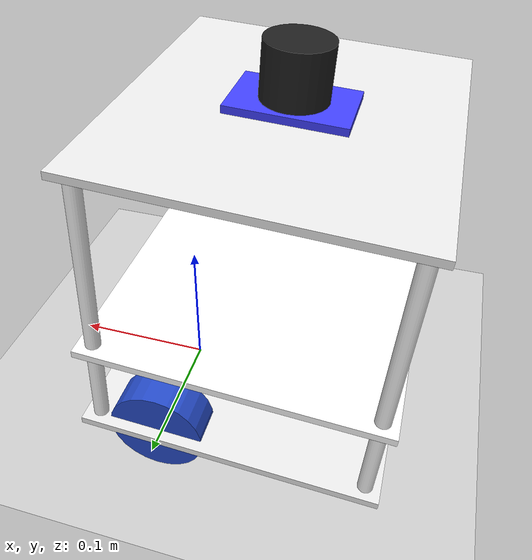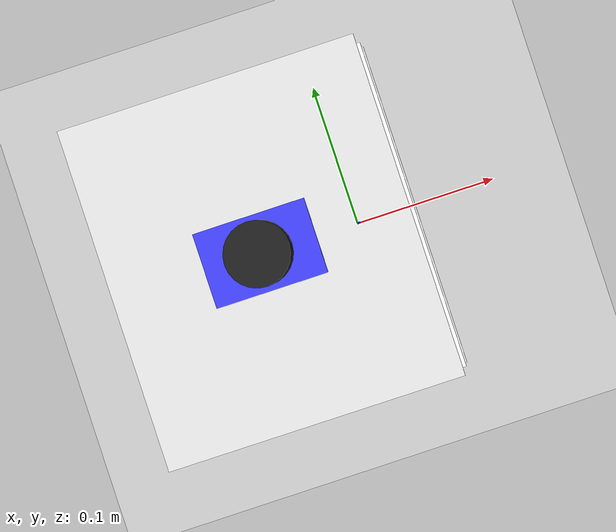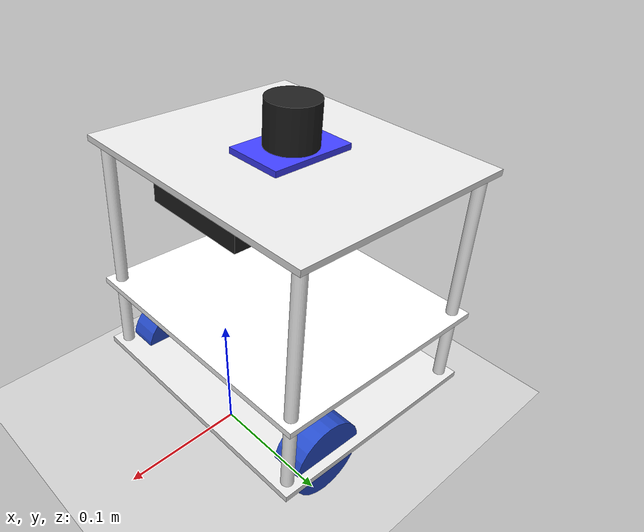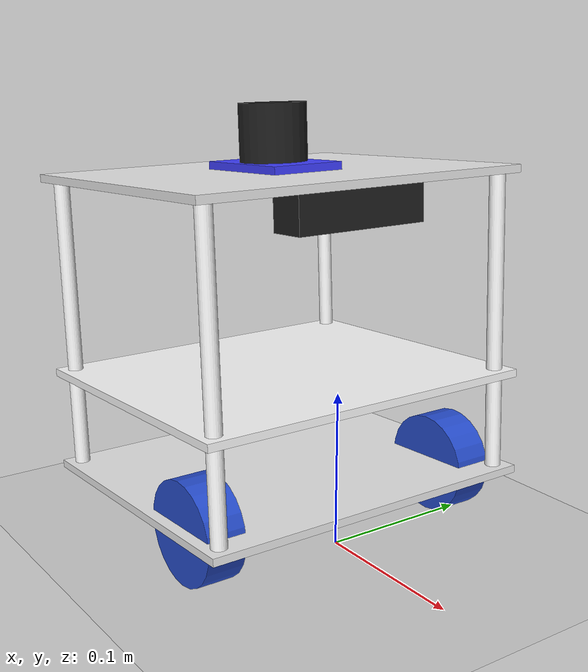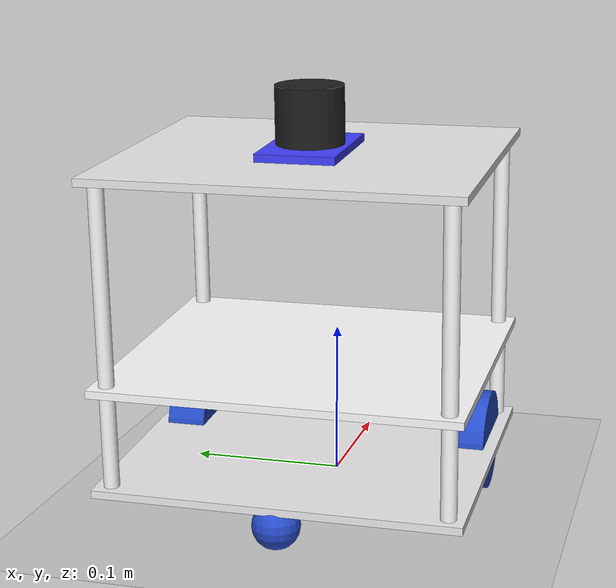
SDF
<sdf version="1.10">
 <world name="empty">
  <physics name="1ms" type="ignored">
   <max_step_size>0.001</max_step_size>
   <real_time_factor>1</real_time_factor>
   <real_time_update_rate>1000</real_time_update_rate>
  </physics>
  <plugin name="gz::sim::systems::Physics" filename="gz-sim-physics-system"/>
  <plugin name="gz::sim::systems::UserCommands" filename="gz-sim-user-commands-system"/>
  <plugin name="gz::sim::systems::SceneBroadcaster" filename="gz-sim-scene-broadcaster-system"/>
  <plugin name="gz::sim::systems::Contact" filename="gz-sim-contact-system"/>
  <plugin filename="gz-sim-sensors-system" name="gz::sim::systems::Sensors">
   <render_engine>ogre2</render_engine>
  </plugin>
  <gravity>0 0 -9.8000000000000007</gravity>
  <magnetic_field>5.5644999999999998e-06 2.2875799999999999e-05 -4.2388400000000002e-05</magnetic_field>
  <atmosphere type="adiabatic"/>
  <scene>
   <ambient>0.400000006 0.400000006 0.400000006 1</ambient>
   <background>0.699999988 0.699999988 0.699999988 1</background>
   <shadows>true</shadows>
  </scene>
  <model name="ground_plane">
   <static>true</static>
   <link name="link">
    <collision name="collision">
     <geometry><plane><normal>0 0 1</normal><size>100 100</size></plane></geometry>
    </collision>
    <visual name="visual">
     <geometry><plane><normal>0 0 1</normal><size>100 100</size></plane></geometry>
     <material>
      <ambient>0.800000012 0.800000012 0.800000012 1</ambient>
      <diffuse>0.800000012 0.800000012 0.800000012 1</diffuse>
      <specular>0.800000012 0.800000012 0.800000012 1</specular>
     </material>
    </visual>
    <inertial>
     <mass>1</mass>
     <inertia><ixx>1</ixx><ixy>0</ixy><ixz>0</ixz><iyy>1</iyy><iyz>0</iyz><izz>1</izz></inertia>
    </inertial>
   </link>
  </model>
  <model name="my_robot">
   <link name="odom">
    <inertial>
     <pose>-0.050411392405063302 2.744815626545582e-19 0.080283702531645601 0 0 0</pose>
     <mass>3.1599999999999988</mass>
     <inertia>
      <ixx>0.0393738511690137</ixx>
      <ixy>-3.568260314509382e-22</ixy>
      <ixz>-0.001603468813291143</ixz>
      <iyy>0.037346945525553787</iyy>
      <iyz>6.9635011759992122e-20</iyz>
      <izz>0.025499184773206739</izz>
     </inertia>
    </inertial>
    <collision name="odom_fixed_joint_lump__base_plate_collision">
     <pose>-0.050000000000000003 0 0.0025000000000000001 0 0 0</pose>
     <geometry><box><size>0.20000000000000001 0.23000000000000001 0.0050000000000000001</size></box></geometry>
    </collision>
    <collision name="odom_fixed_joint_lump__electronics_plate_collision_1">
     <pose>-0.050000000000000003 0 0.067500000000000004 0 0 0</pose>
     <geometry><box><size>0.20000000000000001 0.23000000000000001 0.0050000000000000001</size></box></geometry>
    </collision>
    <collision name="odom_fixed_joint_lump__top_plate_collision_2">
     <pose>-0.050000000000000003 0 0.19750000000000001 0 0 0</pose>
     <geometry><box><size>0.20000000000000001 0.23000000000000001 0.0050000000000000001</size></box></geometry>
    </collision>
    <collision name="odom_fixed_joint_lump__lidar_base_collision_3">
     <pose>-0.050000000000000003 0 0.20250000000000001 0 0 0</pose>
     <geometry><box><size>0.074999999999999997 0.050000000000000003 0.0050000000000000001</size></box></geometry>
    </collision>
    <collision name="odom_fixed_joint_lump__lidar_link_collision_4">
     <pose>-0.050000000000000003 0 0.22065000000000001 0 0 0</pose>
     <geometry>
      <cylinder><length>0.041300000000000003</length><radius>0.021499999999999998</radius></cylinder>
     </geometry>
    </collision>
    <collision name="odom_fixed_joint_lump__rod_front_left_collision_5">
     <pose>0.039999999999999987 0.105 0.10000000000000001 0 0 0</pose>
     <geometry><cylinder><length>0.19</length><radius>0.0050000000000000001</radius></cylinder></geometry>
    </collision>
    <collision name="odom_fixed_joint_lump__rod_front_right_collision_6">
     <pose>0.039999999999999987 -0.105 0.10000000000000001 0 0 0</pose>
     <geometry><cylinder><length>0.19</length><radius>0.0050000000000000001</radius></cylinder></geometry>
    </collision>
    <collision name="odom_fixed_joint_lump__rod_rear_left_collision_7">
     <pose>-0.14000000000000001 0.105 0.10000000000000001 0 0 0</pose>
     <geometry><cylinder><length>0.19</length><radius>0.0050000000000000001</radius></cylinder></geometry>
    </collision>
    <collision name="odom_fixed_joint_lump__rod_rear_right_collision_8">
     <pose>-0.14000000000000001 -0.105 0.10000000000000001 0 0 0</pose>
     <geometry><cylinder><length>0.19</length><radius>0.0050000000000000001</radius></cylinder></geometry>
    </collision>
    <collision name="odom_fixed_joint_lump__camera_link_collision_9">
     <pose>0.027 0 0.183 0 1.5707963267948966 0</pose>
     <geometry><box><size>0.025000000000000001 0.089999999999999997 0.025000000000000001</size></box></geometry>
    </collision>
    <collision name="odom_fixed_joint_lump__caster_wheel_collision_10">
     <pose>-0.14000000000000001 0 -0.01 0 0 0</pose>
     <geometry><sphere><radius>0.014999999999999999</radius></sphere></geometry>
     <surface>
      <contact><ode><kp>1000000</kp><kd>1</kd></ode></contact>
      <friction><ode><mu>0.01</mu><mu2>0.01</mu2></ode></friction>
     </surface>
    </collision>
    <visual name="odom_fixed_joint_lump__base_plate_visual">
     <pose>-0.050000000000000003 0 0.0025000000000000001 0 0 0</pose>
     <geometry><box><size>0.20000000000000001 0.23000000000000001 0.0050000000000000001</size></box></geometry>
     <material>
      <script><name>Gazebo/White</name><uri>file://media/materials/scripts/gazebo.material</uri></script>
      <diffuse>1 1 1 1</diffuse>
      <ambient>1 1 1 1</ambient>
     </material>
    </visual>
    <visual name="odom_fixed_joint_lump__electronics_plate_visual_1">
     <pose>-0.050000000000000003 0 0.067500000000000004 0 0 0</pose>
     <geometry><box><size>0.20000000000000001 0.23000000000000001 0.0050000000000000001</size></box></geometry>
     <material><diffuse>1 1 1 1</diffuse><ambient>1 1 1 1</ambient></material>
    </visual>
    <visual name="odom_fixed_joint_lump__top_plate_visual_2">
     <pose>-0.050000000000000003 0 0.19750000000000001 0 0 0</pose>
     <geometry><box><size>0.20000000000000001 0.23000000000000001 0.0050000000000000001</size></box></geometry>
     <material>
      <script><name>Gazebo/White</name><uri>file://media/materials/scripts/gazebo.material</uri></script>
      <diffuse>1 1 1 1</diffuse>
      <ambient>1 1 1 1</ambient>
     </material>
    </visual>
    <visual name="odom_fixed_joint_lump__lidar_base_visual_3">
     <pose>-0.050000000000000003 0 0.20250000000000001 0 0 0</pose>
     <geometry><box><size>0.074999999999999997 0.050000000000000003 0.0050000000000000001</size></box></geometry>
     <material><diffuse>0.25 0.25 1 1</diffuse><ambient>0.25 0.25 1 1</ambient></material>
    </visual>
    <visual name="odom_fixed_joint_lump__lidar_link_visual_4">
     <pose>-0.050000000000000003 0 0.22065000000000001 0 0 0</pose>
     <geometry>
      <cylinder><length>0.041300000000000003</length><radius>0.021499999999999998</radius></cylinder>
     </geometry>
     <material>
      <script><name>Gazebo/Black</name><uri>file://media/materials/scripts/gazebo.material</uri></script>
      <diffuse>0 0 0 1</diffuse>
      <ambient>0 0 0 1</ambient>
     </material>
    </visual>
    <visual name="odom_fixed_joint_lump__rod_front_left_visual_5">
     <pose>0.039999999999999987 0.105 0.10000000000000001 0 0 0</pose>
     <geometry><cylinder><length>0.19</length><radius>0.0050000000000000001</radius></cylinder></geometry>
     <material><diffuse>1 1 1 1</diffuse><ambient>1 1 1 1</ambient></material>
    </visual>
    <visual name="odom_fixed_joint_lump__rod_front_right_visual_6">
     <pose>0.039999999999999987 -0.105 0.10000000000000001 0 0 0</pose>
     <geometry><cylinder><length>0.19</length><radius>0.0050000000000000001</radius></cylinder></geometry>
     <material><diffuse>1 1 1 1</diffuse><ambient>1 1 1 1</ambient></material>
    </visual>
    <visual name="odom_fixed_joint_lump__rod_rear_left_visual_7">
     <pose>-0.14000000000000001 0.105 0.10000000000000001 0 0 0</pose>
     <geometry><cylinder><length>0.19</length><radius>0.0050000000000000001</radius></cylinder></geometry>
     <material><diffuse>1 1 1 1</diffuse><ambient>1 1 1 1</ambient></material>
    </visual>
    <visual name="odom_fixed_joint_lump__rod_rear_right_visual_8">
     <pose>-0.14000000000000001 -0.105 0.10000000000000001 0 0 0</pose>
     <geometry><cylinder><length>0.19</length><radius>0.0050000000000000001</radius></cylinder></geometry>
     <material><diffuse>1 1 1 1</diffuse><ambient>1 1 1 1</ambient></material>
    </visual>
    <visual name="odom_fixed_joint_lump__camera_link_visual_9">
     <pose>0.027 0 0.183 0 1.5707963267948966 0</pose>
     <geometry><box><size>0.025000000000000001 0.089999999999999997 0.025000000000000001</size></box></geometry>
     <material>
      <script><name>Gazebo/Black</name><uri>file://media/materials/scripts/gazebo.material</uri></script>
      <diffuse>0 0 0 1</diffuse>
      <ambient>0 0 0 1</ambient>
     </material>
    </visual>
    <visual name="odom_fixed_joint_lump__caster_wheel_visual_10">
     <pose>-0.14000000000000001 0 -0.01 0 0 0</pose>
     <geometry><sphere><radius>0.014999999999999999</radius></sphere></geometry>
     <material>
      <script><name>Gazebo/Blue</name><uri>file://media/materials/scripts/gazebo.material</uri></script>
      <diffuse>1 1 1 1</diffuse>
      <ambient>1 1 1 1</ambient>
     </material>
    </visual>
   </link>
   <joint name="left_wheel_joint" type="revolute">
    <parent>odom</parent>
    <child>left_wheel</child>
    <axis>
     <xyz>0 1 0</xyz>
     <limit>
      <lower>-inf</lower>
      <upper>inf</upper>
      <effort>200</effort>
      <velocity>20</velocity>
      <stiffness>100000000</stiffness>
      <dissipation>1</dissipation>
     </limit>
     <dynamics>
      <spring_reference>0</spring_reference>
      <spring_stiffness>0</spring_stiffness>
      <damping>0</damping>
      <friction>0</friction>
     </dynamics>
    </axis>
   </joint>
   <link name="left_wheel">
    <pose>0 0.094999999999999987 1.3877787807814457e-17 2.5518571763130875e-32 -1.6958864867966383e-12 -2.1638300507721958e-44</pose>
    <inertial>
     <mass>1</mass>
     <inertia>
      <ixx>0.00031614583333333332</ixx>
      <ixy>0</ixy>
      <ixz>0</ixz>
      <iyy>0.00031614583333333332</iyy>
      <iyz>0</iyz>
      <izz>0.00052812500000000006</izz>
     </inertia>
    </inertial>
    <collision name="left_wheel_collision">
     <pose>0 0 0 1.5707963267948959 0 0</pose>
     <geometry>
      <cylinder><length>0.025000000000000001</length><radius>0.032500000000000001</radius></cylinder>
     </geometry>
     <surface>
      <contact><ode><kp>1000000</kp><kd>1</kd></ode></contact>
      <friction><ode><mu>0.80000000000000004</mu><mu2>0.80000000000000004</mu2></ode></friction>
     </surface>
    </collision>
    <visual name="left_wheel_visual">
     <pose>0 0 0 1.5707963267948959 0 0</pose>
     <geometry>
      <cylinder><length>0.025000000000000001</length><radius>0.032500000000000001</radius></cylinder>
     </geometry>
     <material>
      <script><name>Gazebo/Blue</name><uri>file://media/materials/scripts/gazebo.material</uri></script>
      <diffuse>0.25 0.25 1 1</diffuse>
      <ambient>0.25 0.25 1 1</ambient>
     </material>
    </visual>
   </link>
   <joint name="right_wheel_joint" type="revolute">
    <parent>odom</parent>
    <child>right_wheel</child>
    <axis>
     <xyz>0 1 0</xyz>
     <limit>
      <lower>-inf</lower>
      <upper>inf</upper>
      <effort>200</effort>
      <velocity>20</velocity>
      <stiffness>100000000</stiffness>
      <dissipation>1</dissipation>
     </limit>
     <dynamics>
      <spring_reference>0</spring_reference>
      <spring_stiffness>0</spring_stiffness>
      <damping>0</damping>
      <friction>0</friction>
     </dynamics>
    </axis>
   </joint>
   <link name="right_wheel">
    <pose>-8.6736173798840355e-19 -0.095000000000000015 0 2.5470423514522502e-32 -1.6959003645844462e-12 -1.5407439555313863e-33</pose>
    <inertial>
     <mass>1</mass>
     <inertia>
      <ixx>0.00031614583333333332</ixx>
      <ixy>0</ixy>
      <ixz>0</ixz>
      <iyy>0.00031614583333333332</iyy>
      <iyz>0</iyz>
      <izz>0.00052812500000000006</izz>
     </inertia>
    </inertial>
    <collision name="right_wheel_collision">
     <pose>0 0 0 1.5707963267948959 0 0</pose>
     <geometry>
      <cylinder><length>0.025000000000000001</length><radius>0.032500000000000001</radius></cylinder>
     </geometry>
     <surface>
      <contact><ode><kp>1000000</kp><kd>1</kd></ode></contact>
      <friction><ode><mu>0.80000000000000004</mu><mu2>0.80000000000000004</mu2></ode></friction>
     </surface>
    </collision>
    <visual name="right_wheel_visual">
     <pose>0 0 0 1.5707963267948959 0 0</pose>
     <geometry>
      <cylinder><length>0.025000000000000001</length><radius>0.032500000000000001</radius></cylinder>
     </geometry>
     <material>
      <script><name>Gazebo/Blue</name><uri>file://media/materials/scripts/gazebo.material</uri></script>
      <diffuse>0.25 0.25 1 1</diffuse>
      <ambient>0.25 0.25 1 1</ambient>
     </material>
    </visual>
   </link>
   <plugin name="gz::sim::systems::DiffDrive" filename="gz-sim-diff-drive-system">
    <left_joint>left_wheel_joint</left_joint>
    <right_joint>right_wheel_joint</right_joint>
    <wheel_separation>0.19</wheel_separation>
    <wheel_radius>0.0325</wheel_radius>
    <max_linear_acceleration>1.0</max_linear_acceleration>
    <min_linear_acceleration>-1.0</min_linear_acceleration>
    <max_angular_acceleration>2.0</max_angular_acceleration>
    <min_angular_acceleration>-2.0</min_angular_acceleration>
    <max_wheel_torque>20</max_wheel_torque>
    <max_wheel_acceleration>1.0</max_wheel_acceleration>
    <topic>/cmd_vel</topic>
    <odom_topic>/odom</odom_topic>
    <tf_topic>/tf</tf_topic>
    <frame_id>odom</frame_id>
    <child_frame_id>base_link</child_frame_id>
    <odom_publish_frequency>50</odom_publish_frequency>
   </plugin>
   <frame name="lidar_joint" attached_to="lidar_base"><pose>0 0 0.02988 0 0 0</pose></frame>
   <frame name="lidar_link" attached_to="lidar_joint"/>
   <frame name="lidar_base_joint" attached_to="top_plate"><pose>0 0 0.0050000000000000001 0 0 0</pose></frame>
   <frame name="lidar_base" attached_to="lidar_base_joint"/>
   <frame name="top_plate_joint" attached_to="electronics_plate"><pose>0 0 0.13 0 0 0</pose></frame>
   <frame name="top_plate" attached_to="top_plate_joint"/>
   <frame name="electronics_plate_joint" attached_to="base_plate">
    <pose>0 0 0.065000000000000002 0 0 0</pose>
   </frame>
   <frame name="electronics_plate" attached_to="electronics_plate_joint"/>
   <frame name="rod_front_left_joint" attached_to="base_plate"/>
   <frame name="rod_front_left" attached_to="rod_front_left_joint"/>
   <frame name="rod_front_right_joint" attached_to="base_plate"/>
   <frame name="rod_front_right" attached_to="rod_front_right_joint"/>
   <frame name="rod_rear_left_joint" attached_to="base_plate"/>
   <frame name="rod_rear_left" attached_to="rod_rear_left_joint"/>
   <frame name="rod_rear_right_joint" attached_to="base_plate"/>
   <frame name="rod_rear_right" attached_to="rod_rear_right_joint"/>
   <frame name="base_plate_joint" attached_to="base_link"><pose>-0.050000000000000003 0 0 0 0 0</pose></frame>
   <frame name="base_plate" attached_to="base_plate_joint"/>
   <frame name="camera_optical_joint" attached_to="camera_link">
    <pose>0 0 0 -1.5707963267948959 -5.5511151231257827e-17 -1.5707963267948959</pose>
   </frame>
   <frame name="camera_optical_frame" attached_to="camera_optical_joint"/>
   <frame name="camera_joint" attached_to="base_link"><pose>0.027 0 0.183 0 1.5707963267948966 0</pose></frame>
   <frame name="camera_link" attached_to="camera_joint"/>
   <frame name="caster_wheel_joint" attached_to="base_link">
    <pose>-0.14000000000000001 0 -0.01 0 0 0</pose>
   </frame>
   <frame name="caster_wheel" attached_to="caster_wheel_joint"/>
   <frame name="base_link_joint" attached_to="odom"/>
   <frame name="base_link" attached_to="base_link_joint"/>
   <pose>-0.0086981214625037329 -1.172902067896973e-17 0.032499978169002366 3.5899507729521404e-16 -0.053701866816013154 -2.2730083497209374e-17</pose>
   <static>false</static>
  </model>
  <light name="sun" type="directional">
   <pose>0 0 10 0 0 0</pose>
   <intensity>1</intensity>
   <direction>-0.5 0.10000000000000001 -0.90000000000000002</direction>
   <diffuse>0.800000012 0.800000012 0.800000012 1</diffuse>
   <specular>0.200000003 0.200000003 0.200000003 1</specular>
   <attenuation>
    <range>1000</range>
    <linear>0.01</linear>
    <constant>0.90000000000000002</constant>
    <quadratic>0.001</quadratic>
   </attenuation>
   <spot><inner_angle>0</inner_angle><outer_angle>0</outer_angle><falloff>0</falloff></spot>
  </light>
 </world>
</sdf>
